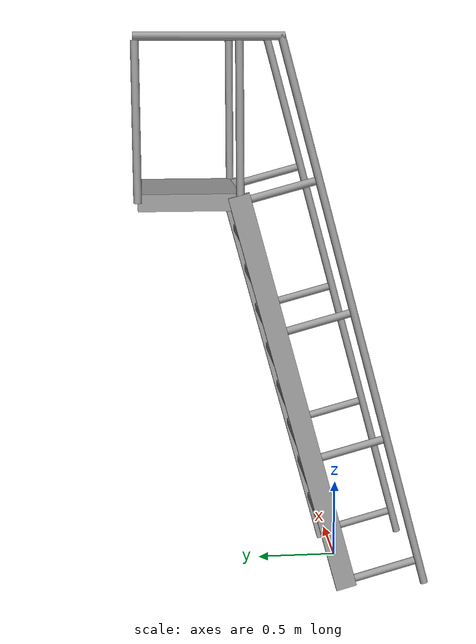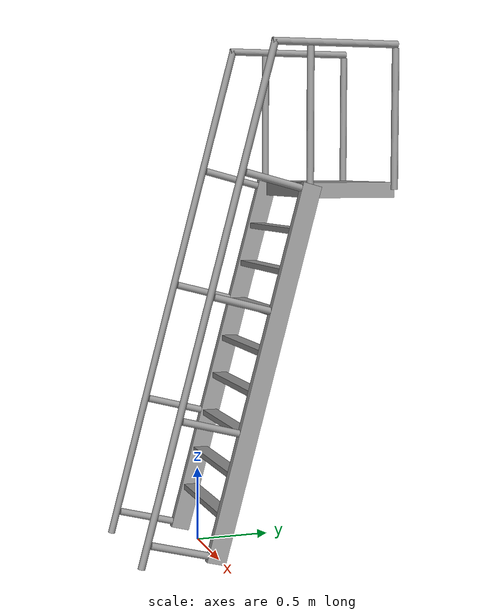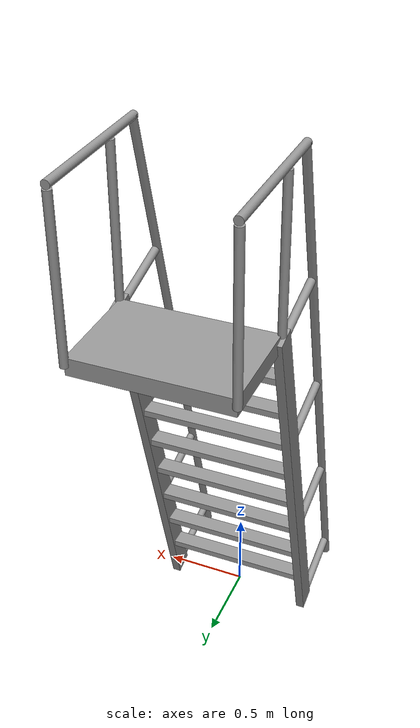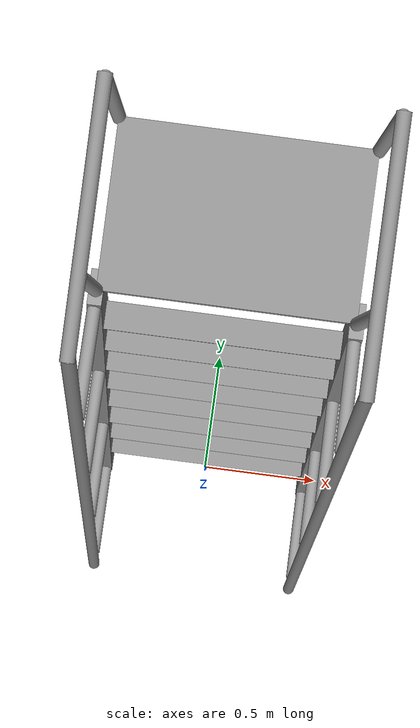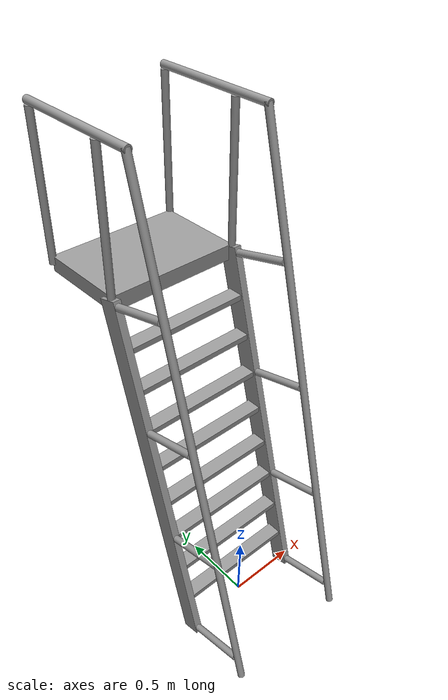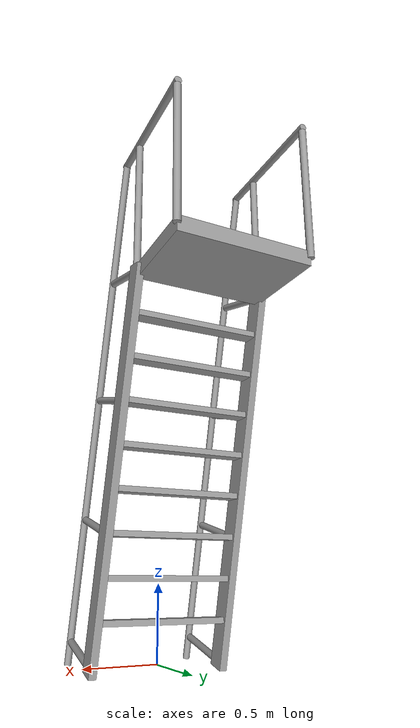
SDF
<?xml version="1.0"?>
<sdf version="1.5">

  <model name= "ladder_75deg_2rails" >
    <static>true</static>
         <link name="step0" >
           <pose>0 0.07145311798163272 0.26666666666666666 0 0 0 </pose>
           <inertial>
             <mass> 9.7548192</mass>
             <inertia>
             <ixx> 0.009571241631672</ixx>
             <iyy> 0.6596303120915761</iyy>
             <izz> 0.666841521540096</izz>
             <ixy>0</ixy>
             <ixz>0</ixz>
             <iyz>0</iyz>
             </inertia>
           </inertial>

           <collision name="collision">
             <geometry>
              <box>
                <size>  0.9  0.1016  0.0381  </size>
              </box>
             </geometry>
           </collision>

          <visual name="visual">
            <geometry>
              <box>
                <size>  0.9  0.1016  0.0381  </size>
              </box>
            </geometry>
            <material>
              <script>
                <uri>file://media/materials/scripts/gazebo.material</uri>
                <name>Gazebo/Grey</name>
              </script>
            </material>
          </visual>
        </link>
         <link name="step1" >
           <pose>0 0.14290623596326543 0.5333333333333333 0 0 0 </pose>
           <inertial>
             <mass> 9.7548192</mass>
             <inertia>
             <ixx> 0.009571241631672</ixx>
             <iyy> 0.6596303120915761</iyy>
             <izz> 0.666841521540096</izz>
             <ixy>0</ixy>
             <ixz>0</ixz>
             <iyz>0</iyz>
             </inertia>
           </inertial>

           <collision name="collision">
             <geometry>
              <box>
                <size>  0.9  0.1016  0.0381  </size>
              </box>
             </geometry>
           </collision>

          <visual name="visual">
            <geometry>
              <box>
                <size>  0.9  0.1016  0.0381  </size>
              </box>
            </geometry>
            <material>
              <script>
                <uri>file://media/materials/scripts/gazebo.material</uri>
                <name>Gazebo/Grey</name>
              </script>
            </material>
          </visual>
        </link>
         <link name="step2" >
           <pose>0 0.21435935394489813 0.8 0 0 0 </pose>
           <inertial>
             <mass> 9.7548192</mass>
             <inertia>
             <ixx> 0.009571241631672</ixx>
             <iyy> 0.6596303120915761</iyy>
             <izz> 0.666841521540096</izz>
             <ixy>0</ixy>
             <ixz>0</ixz>
             <iyz>0</iyz>
             </inertia>
           </inertial>

           <collision name="collision">
             <geometry>
              <box>
                <size>  0.9  0.1016  0.0381  </size>
              </box>
             </geometry>
           </collision>

          <visual name="visual">
            <geometry>
              <box>
                <size>  0.9  0.1016  0.0381  </size>
              </box>
            </geometry>
            <material>
              <script>
                <uri>file://media/materials/scripts/gazebo.material</uri>
                <name>Gazebo/Grey</name>
              </script>
            </material>
          </visual>
        </link>
         <link name="step3" >
           <pose>0 0.28581247192653086 1.0666666666666667 0 0 0 </pose>
           <inertial>
             <mass> 9.7548192</mass>
             <inertia>
             <ixx> 0.009571241631672</ixx>
             <iyy> 0.6596303120915761</iyy>
             <izz> 0.666841521540096</izz>
             <ixy>0</ixy>
             <ixz>0</ixz>
             <iyz>0</iyz>
             </inertia>
           </inertial>

           <collision name="collision">
             <geometry>
              <box>
                <size>  0.9  0.1016  0.0381  </size>
              </box>
             </geometry>
           </collision>

          <visual name="visual">
            <geometry>
              <box>
                <size>  0.9  0.1016  0.0381  </size>
              </box>
            </geometry>
            <material>
              <script>
                <uri>file://media/materials/scripts/gazebo.material</uri>
                <name>Gazebo/Grey</name>
              </script>
            </material>
          </visual>
        </link>
         <link name="step4" >
           <pose>0 0.3572655899081636 1.3333333333333333 0 0 0 </pose>
           <inertial>
             <mass> 9.7548192</mass>
             <inertia>
             <ixx> 0.009571241631672</ixx>
             <iyy> 0.6596303120915761</iyy>
             <izz> 0.666841521540096</izz>
             <ixy>0</ixy>
             <ixz>0</ixz>
             <iyz>0</iyz>
             </inertia>
           </inertial>

           <collision name="collision">
             <geometry>
              <box>
                <size>  0.9  0.1016  0.0381  </size>
              </box>
             </geometry>
           </collision>

          <visual name="visual">
            <geometry>
              <box>
                <size>  0.9  0.1016  0.0381  </size>
              </box>
            </geometry>
            <material>
              <script>
                <uri>file://media/materials/scripts/gazebo.material</uri>
                <name>Gazebo/Grey</name>
              </script>
            </material>
          </visual>
        </link>
         <link name="step5" >
           <pose>0 0.42871870788979627 1.6 0 0 0 </pose>
           <inertial>
             <mass> 9.7548192</mass>
             <inertia>
             <ixx> 0.009571241631672</ixx>
             <iyy> 0.6596303120915761</iyy>
             <izz> 0.666841521540096</izz>
             <ixy>0</ixy>
             <ixz>0</ixz>
             <iyz>0</iyz>
             </inertia>
           </inertial>

           <collision name="collision">
             <geometry>
              <box>
                <size>  0.9  0.1016  0.0381  </size>
              </box>
             </geometry>
           </collision>

          <visual name="visual">
            <geometry>
              <box>
                <size>  0.9  0.1016  0.0381  </size>
              </box>
            </geometry>
            <material>
              <script>
                <uri>file://media/materials/scripts/gazebo.material</uri>
                <name>Gazebo/Grey</name>
              </script>
            </material>
          </visual>
        </link>
         <link name="step6" >
           <pose>0 0.500171825871429 1.8666666666666667 0 0 0 </pose>
           <inertial>
             <mass> 9.7548192</mass>
             <inertia>
             <ixx> 0.009571241631672</ixx>
             <iyy> 0.6596303120915761</iyy>
             <izz> 0.666841521540096</izz>
             <ixy>0</ixy>
             <ixz>0</ixz>
             <iyz>0</iyz>
             </inertia>
           </inertial>

           <collision name="collision">
             <geometry>
              <box>
                <size>  0.9  0.1016  0.0381  </size>
              </box>
             </geometry>
           </collision>

          <visual name="visual">
            <geometry>
              <box>
                <size>  0.9  0.1016  0.0381  </size>
              </box>
            </geometry>
            <material>
              <script>
                <uri>file://media/materials/scripts/gazebo.material</uri>
                <name>Gazebo/Grey</name>
              </script>
            </material>
          </visual>
        </link>
         <link name="step7" >
           <pose>0 0.5716249438530617 2.1333333333333333 0 0 0 </pose>
           <inertial>
             <mass> 9.7548192</mass>
             <inertia>
             <ixx> 0.009571241631672</ixx>
             <iyy> 0.6596303120915761</iyy>
             <izz> 0.666841521540096</izz>
             <ixy>0</ixy>
             <ixz>0</ixz>
             <iyz>0</iyz>
             </inertia>
           </inertial>

           <collision name="collision">
             <geometry>
              <box>
                <size>  0.9  0.1016  0.0381  </size>
              </box>
             </geometry>
           </collision>

          <visual name="visual">
            <geometry>
              <box>
                <size>  0.9  0.1016  0.0381  </size>
              </box>
            </geometry>
            <material>
              <script>
                <uri>file://media/materials/scripts/gazebo.material</uri>
                <name>Gazebo/Grey</name>
              </script>
            </material>
          </visual>
        </link>
    <link name="landing">
      <pose>0 0.9430780618346943 2.4 0 0 0 </pose>
        <inertial>
          <mass> 57.607200000000006</mass>
          <inertia>
          <ixx> 1.735184598966</ixx>
          <iyy> 3.8954545989660008</iyy>
          <izz> 5.616702</izz>
          <ixy>0</ixy>
          <ixz>0</ixz>
          <iyz>0</iyz>
          </inertia>
        </inertial>

        <collision name="collision">
          <geometry>
           <box>
             <size> 0.9 0.6 0.1016</size>
           </box>
          </geometry>
        </collision>

        <visual name="visual">
          <geometry>
            <box>
             <size> 0.9 0.6 0.1016</size>
            </box>
          </geometry>
          <material>
            <script>
              <uri>file://media/materials/scripts/gazebo.material</uri>
              <name>Gazebo/Grey</name>
            </script>
          </material>
        </visual>
    </link>

      <link name="left_side_wall" >
        <pose>-0.45 0.3215390309173472 1.2 1.3089969389957472 0 0 </pose>
        <collision name="collision">
          <geometry>
            <box>
              <size> 0.0508  2.564662832984199  0.13 </size>
            </box>
          </geometry>
        </collision>

        <visual name="visual">
          <geometry>
            <box>
              <size> 0.0508  2.564662832984199  0.13 </size>
            </box>
          </geometry>
          <material>
            <script>
              <uri>file://media/materials/scripts/gazebo.material</uri>
              <name>Gazebo/Grey</name>
            </script>
          </material>
        </visual>

      </link>
      <link name="right_side_wall" >
        <pose>0.45 0.3215390309173472 1.2 1.3089969389957472 0 0 </pose>
        <collision name="collision">
          <geometry>
            <box>
              <size> 0.0508  2.564662832984199  0.13 </size>
            </box>
          </geometry>
        </collision>

        <visual name="visual">
          <geometry>
            <box>
              <size> 0.0508  2.564662832984199  0.13 </size>
            </box>
          </geometry>
          <material>
            <script>
              <uri>file://media/materials/scripts/gazebo.material</uri>
              <name>Gazebo/Grey</name>
            </script>
          </material>
        </visual>

      </link>

         <link name="left_railing_long" >
           <pose>-0.45 -0.0534609690826528 1.6665063509461095 -0.26179938779914935 0 0 </pose>

            <collision name="collision">
              <geometry>
                <cylinder>
                  <radius>0.02413</radius>
                  <length>3.5152934205488977</length>
                </cylinder>
              </geometry>
            </collision>

            <visual name="visual">
              <geometry>
                <cylinder>
                  <radius>0.02413</radius>
                  <length>3.5152934205488977</length>
                </cylinder>
              </geometry>
              <material>
                <script>
                  <uri>file://media/materials/scripts/gazebo.material</uri>
                  <name>Gazebo/Grey</name>
                </script>
              </material>
            </visual>
         </link>

              <link name="left_railing_upright0" >
                <pose> -0.45 -0.21008886721787234 0.05629314230979826 1.3089969389957472 0 0 </pose>

                <collision name="collision">
                  <geometry>
                    <cylinder>
                      <radius>0.02413</radius>
                      <length>0.48296291314453416</length>
                    </cylinder>
                  </geometry>
                </collision>

                <visual name="visual">
                  <geometry>
                    <cylinder>
                      <radius>0.02413</radius>
                      <length>0.48296291314453416</length>
                    </cylinder>
                  </geometry>
                  <material>
                    <script>
                      <uri>file://media/materials/scripts/gazebo.material</uri>
                      <name>Gazebo/Grey</name>
                    </script>
                  </material>
                </visual>
              </link>
              <link name="left_railing_upright1" >
                <pose> -0.45 0.004270486727025777 0.8562931423097981 1.3089969389957472 0 0 </pose>

                <collision name="collision">
                  <geometry>
                    <cylinder>
                      <radius>0.02413</radius>
                      <length>0.48296291314453416</length>
                    </cylinder>
                  </geometry>
                </collision>

                <visual name="visual">
                  <geometry>
                    <cylinder>
                      <radius>0.02413</radius>
                      <length>0.48296291314453416</length>
                    </cylinder>
                  </geometry>
                  <material>
                    <script>
                      <uri>file://media/materials/scripts/gazebo.material</uri>
                      <name>Gazebo/Grey</name>
                    </script>
                  </material>
                </visual>
              </link>
              <link name="left_railing_upright2" >
                <pose> -0.45 0.21862984067192393 1.6562931423097982 1.3089969389957472 0 0 </pose>

                <collision name="collision">
                  <geometry>
                    <cylinder>
                      <radius>0.02413</radius>
                      <length>0.48296291314453416</length>
                    </cylinder>
                  </geometry>
                </collision>

                <visual name="visual">
                  <geometry>
                    <cylinder>
                      <radius>0.02413</radius>
                      <length>0.48296291314453416</length>
                    </cylinder>
                  </geometry>
                  <material>
                    <script>
                      <uri>file://media/materials/scripts/gazebo.material</uri>
                      <name>Gazebo/Grey</name>
                    </script>
                  </material>
                </visual>
              </link>
              <link name="left_railing_upright3" >
                <pose> -0.45 0.43298919461682206 2.4562931423097982 1.3089969389957472 0 0 </pose>

                <collision name="collision">
                  <geometry>
                    <cylinder>
                      <radius>0.02413</radius>
                      <length>0.48296291314453416</length>
                    </cylinder>
                  </geometry>
                </collision>

                <visual name="visual">
                  <geometry>
                    <cylinder>
                      <radius>0.02413</radius>
                      <length>0.48296291314453416</length>
                    </cylinder>
                  </geometry>
                  <material>
                    <script>
                      <uri>file://media/materials/scripts/gazebo.material</uri>
                      <name>Gazebo/Grey</name>
                    </script>
                  </material>
                </visual>
              </link>

         <link name="left_railing_landing_top" >

           <pose> -0.45 0.8180780618346943 3.357142701892219 1.5707963267948966 0 0 </pose>

           <collision name="collision">
             <geometry>
               <cylinder>
                 <radius>0.02413</radius>
                 <length>0.87413</length>
               </cylinder>
             </geometry>
           </collision>

           <visual name="visual">
             <geometry>
               <cylinder>
                 <radius>0.02413</radius>
                 <length>0.87413</length>
               </cylinder>
             </geometry>
             <material>
               <script>
                 <uri>file://media/materials/scripts/gazebo.material</uri>
                 <name>Gazebo/Grey</name>
               </script>
             </material>
           </visual>
         </link>

            <link name="left_railing_landing_upright_0">
              <pose>-0.45 0.6430780618346944 2.8665063509461097 0 0 0</pose>
              <collision name="collision">
                <geometry>
                  <cylinder>
                    <radius>0.02413</radius>
                    <length>0.9330127018922194</length>
                  </cylinder>
                </geometry>
              </collision>

              <visual name="visual">
                <geometry>
                  <cylinder>
                    <radius>0.02413</radius>
                    <length>0.9330127018922194</length>
                  </cylinder>
                </geometry>
                <material>
                  <script>
                    <uri>file://media/materials/scripts/gazebo.material</uri>
                    <name>Gazebo/Grey</name>
                  </script>
                </material>
              </visual>
            </link>
            <link name="left_railing_landing_upright_1">
              <pose>-0.45 1.2430780618346944 2.8665063509461097 0 0 0</pose>
              <collision name="collision">
                <geometry>
                  <cylinder>
                    <radius>0.02413</radius>
                    <length>0.9330127018922194</length>
                  </cylinder>
                </geometry>
              </collision>

              <visual name="visual">
                <geometry>
                  <cylinder>
                    <radius>0.02413</radius>
                    <length>0.9330127018922194</length>
                  </cylinder>
                </geometry>
                <material>
                  <script>
                    <uri>file://media/materials/scripts/gazebo.material</uri>
                    <name>Gazebo/Grey</name>
                  </script>
                </material>
              </visual>
            </link>

         <link name="right_railing_long" >
           <pose>0.45 -0.0534609690826528 1.6665063509461095 -0.26179938779914935 0 0 </pose>

            <collision name="collision">
              <geometry>
                <cylinder>
                  <radius>0.02413</radius>
                  <length>3.5152934205488977</length>
                </cylinder>
              </geometry>
            </collision>

            <visual name="visual">
              <geometry>
                <cylinder>
                  <radius>0.02413</radius>
                  <length>3.5152934205488977</length>
                </cylinder>
              </geometry>
              <material>
                <script>
                  <uri>file://media/materials/scripts/gazebo.material</uri>
                  <name>Gazebo/Grey</name>
                </script>
              </material>
            </visual>
         </link>

              <link name="right_railing_upright0" >
                <pose> 0.45 -0.21008886721787234 0.05629314230979826 1.3089969389957472 0 0 </pose>

                <collision name="collision">
                  <geometry>
                    <cylinder>
                      <radius>0.02413</radius>
                      <length>0.48296291314453416</length>
                    </cylinder>
                  </geometry>
                </collision>

                <visual name="visual">
                  <geometry>
                    <cylinder>
                      <radius>0.02413</radius>
                      <length>0.48296291314453416</length>
                    </cylinder>
                  </geometry>
                  <material>
                    <script>
                      <uri>file://media/materials/scripts/gazebo.material</uri>
                      <name>Gazebo/Grey</name>
                    </script>
                  </material>
                </visual>
              </link>
              <link name="right_railing_upright1" >
                <pose> 0.45 0.004270486727025777 0.8562931423097981 1.3089969389957472 0 0 </pose>

                <collision name="collision">
                  <geometry>
                    <cylinder>
                      <radius>0.02413</radius>
                      <length>0.48296291314453416</length>
                    </cylinder>
                  </geometry>
                </collision>

                <visual name="visual">
                  <geometry>
                    <cylinder>
                      <radius>0.02413</radius>
                      <length>0.48296291314453416</length>
                    </cylinder>
                  </geometry>
                  <material>
                    <script>
                      <uri>file://media/materials/scripts/gazebo.material</uri>
                      <name>Gazebo/Grey</name>
                    </script>
                  </material>
                </visual>
              </link>
              <link name="right_railing_upright2" >
                <pose> 0.45 0.21862984067192393 1.6562931423097982 1.3089969389957472 0 0 </pose>

                <collision name="collision">
                  <geometry>
                    <cylinder>
                      <radius>0.02413</radius>
                      <length>0.48296291314453416</length>
                    </cylinder>
                  </geometry>
                </collision>

                <visual name="visual">
                  <geometry>
                    <cylinder>
                      <radius>0.02413</radius>
                      <length>0.48296291314453416</length>
                    </cylinder>
                  </geometry>
                  <material>
                    <script>
                      <uri>file://media/materials/scripts/gazebo.material</uri>
                      <name>Gazebo/Grey</name>
                    </script>
                  </material>
                </visual>
              </link>
              <link name="right_railing_upright3" >
                <pose> 0.45 0.43298919461682206 2.4562931423097982 1.3089969389957472 0 0 </pose>

                <collision name="collision">
                  <geometry>
                    <cylinder>
                      <radius>0.02413</radius>
                      <length>0.48296291314453416</length>
                    </cylinder>
                  </geometry>
                </collision>

                <visual name="visual">
                  <geometry>
                    <cylinder>
                      <radius>0.02413</radius>
                      <length>0.48296291314453416</length>
                    </cylinder>
                  </geometry>
                  <material>
                    <script>
                      <uri>file://media/materials/scripts/gazebo.material</uri>
                      <name>Gazebo/Grey</name>
                    </script>
                  </material>
                </visual>
              </link>

         <link name="right_railing_landing_top" >

           <pose> 0.45 0.8180780618346943 3.357142701892219 1.5707963267948966 0 0 </pose>

           <collision name="collision">
             <geometry>
               <cylinder>
                 <radius>0.02413</radius>
                 <length>0.87413</length>
               </cylinder>
             </geometry>
           </collision>

           <visual name="visual">
             <geometry>
               <cylinder>
                 <radius>0.02413</radius>
                 <length>0.87413</length>
               </cylinder>
             </geometry>
             <material>
               <script>
                 <uri>file://media/materials/scripts/gazebo.material</uri>
                 <name>Gazebo/Grey</name>
               </script>
             </material>
           </visual>
         </link>

            <link name="right_railing_landing_upright_0">
              <pose>0.45 0.6430780618346944 2.8665063509461097 0 0 0</pose>
              <collision name="collision">
                <geometry>
                  <cylinder>
                    <radius>0.02413</radius>
                    <length>0.9330127018922194</length>
                  </cylinder>
                </geometry>
              </collision>

              <visual name="visual">
                <geometry>
                  <cylinder>
                    <radius>0.02413</radius>
                    <length>0.9330127018922194</length>
                  </cylinder>
                </geometry>
                <material>
                  <script>
                    <uri>file://media/materials/scripts/gazebo.material</uri>
                    <name>Gazebo/Grey</name>
                  </script>
                </material>
              </visual>
            </link>
            <link name="right_railing_landing_upright_1">
              <pose>0.45 1.2430780618346944 2.8665063509461097 0 0 0</pose>
              <collision name="collision">
                <geometry>
                  <cylinder>
                    <radius>0.02413</radius>
                    <length>0.9330127018922194</length>
                  </cylinder>
                </geometry>
              </collision>

              <visual name="visual">
                <geometry>
                  <cylinder>
                    <radius>0.02413</radius>
                    <length>0.9330127018922194</length>
                  </cylinder>
                </geometry>
                <material>
                  <script>
                    <uri>file://media/materials/scripts/gazebo.material</uri>
                    <name>Gazebo/Grey</name>
                  </script>
                </material>
              </visual>
            </link>

  </model>
</sdf>
